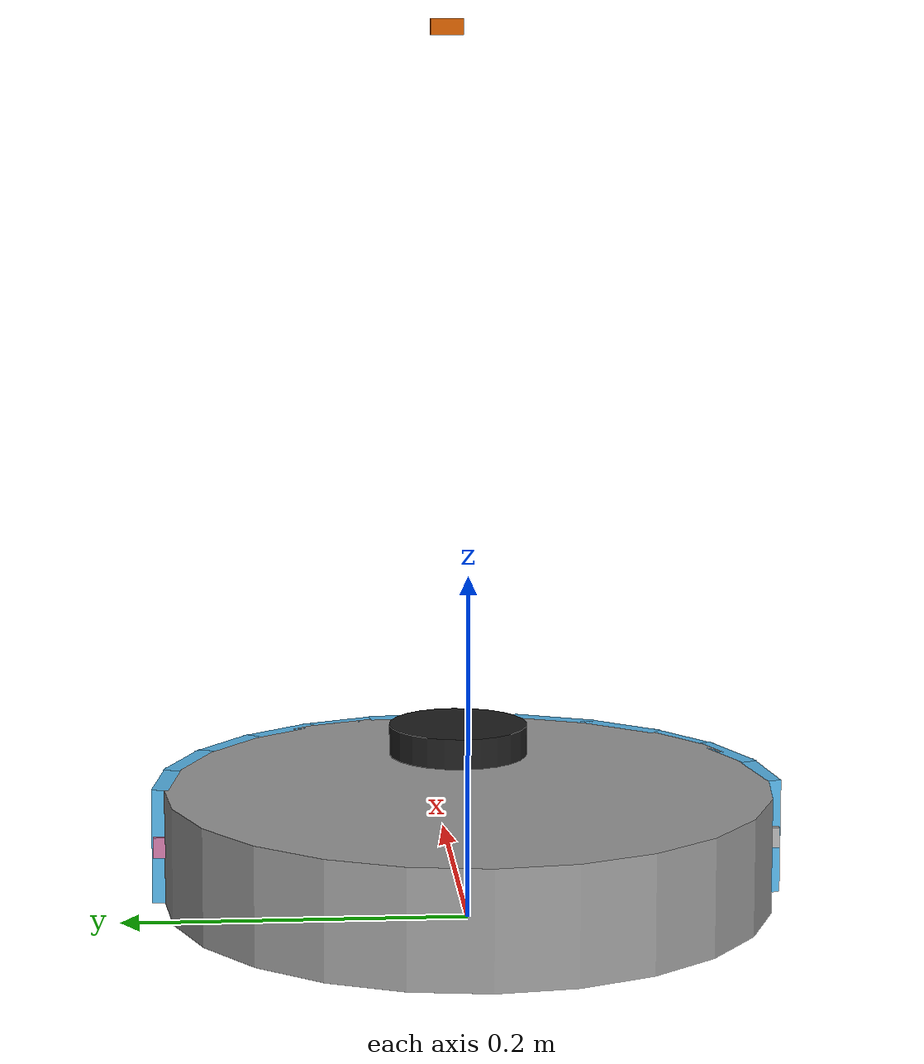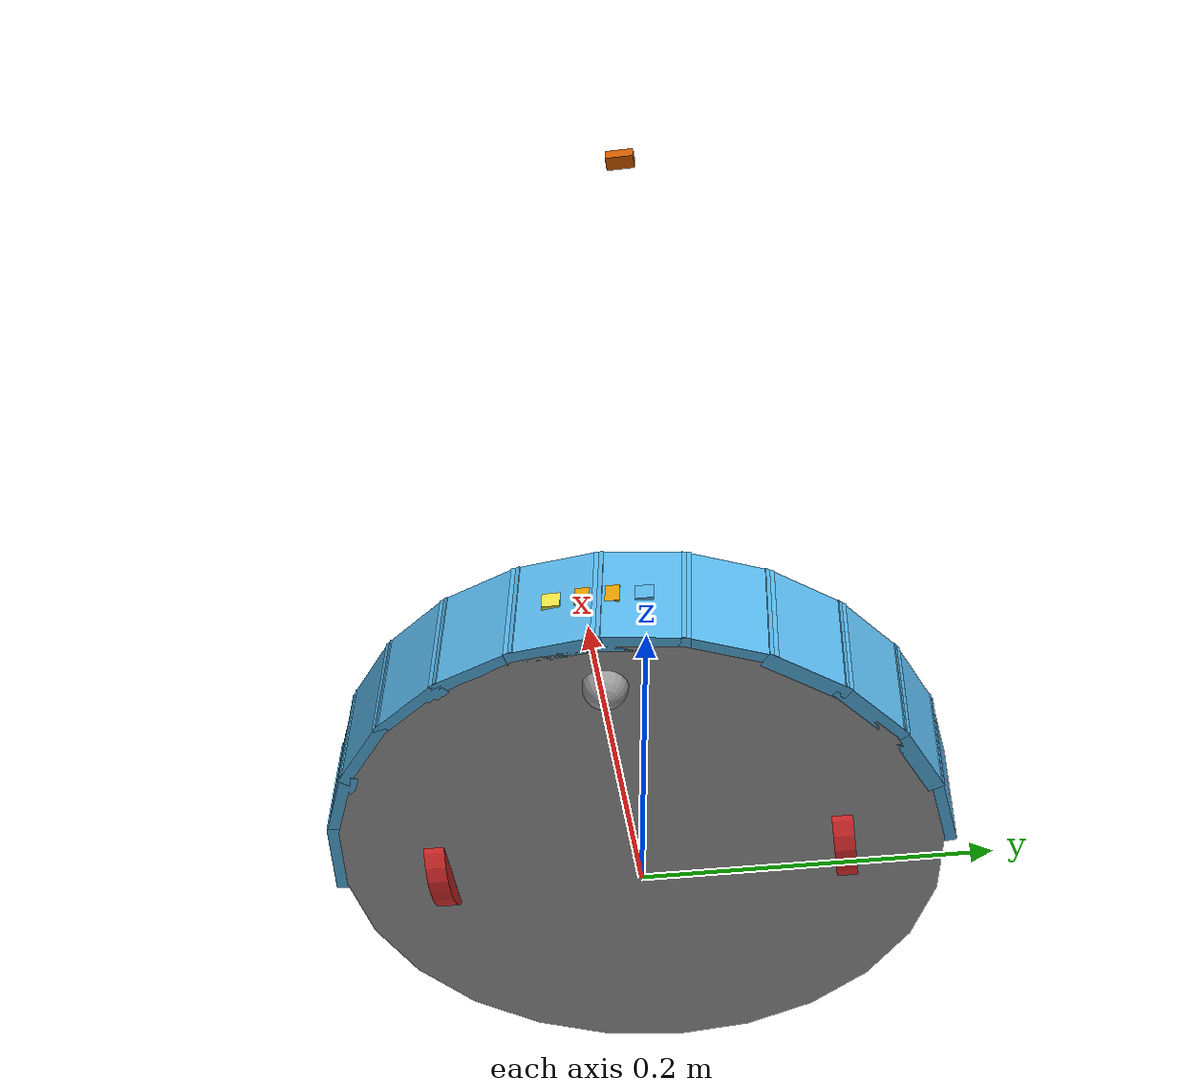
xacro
<?xml version="1.0" ?>
<robot name="semnav_robot" xmlns:xacro="http://ros.org/wiki/xacro">
  <xacro:include filename="params.xacro" />
  <xacro:include filename="inertial.xacro" />
  <xacro:include filename="plugins.xacro" />
  <xacro:include filename="materials.xacro" />

  <!-- One bumper facet: a thin box tangent to the body at angle 'ang' (deg from
       front), at the body radius. Named collision so the contact sensor can list it. -->
  <xacro:macro name="bumper_facet" params="prefix idx ang width">
    <visual>
      <origin xyz="${(base_diameter/2)*cos(ang*DEG2RAD)} ${(base_diameter/2)*sin(ang*DEG2RAD)} ${bumper_z}"
              rpy="0 0 ${(ang+90)*DEG2RAD}"/>
      <geometry>
        <box size="${width} ${bumper_thickness} ${bumper_height}"/>
      </geometry>
      <material name="dark"/>
    </visual>
    <collision name="${prefix}_${idx}">
      <origin xyz="${(base_diameter/2)*cos(ang*DEG2RAD)} ${(base_diameter/2)*sin(ang*DEG2RAD)} ${bumper_z}"
              rpy="0 0 ${(ang+90)*DEG2RAD}"/>
      <geometry>
        <box size="${width} ${bumper_thickness} ${bumper_height}"/>
      </geometry>
    </collision>
  </xacro:macro>

  <!-- A 90-deg bumper half built from 'n' facets spanning a0 .. a0+90 deg.
       Facet width = arc chord * 1.15 so neighbours overlap (continuous, no gaps). -->
  <xacro:macro name="bumper_arc" params="prefix a0 n i:=0">
    <xacro:if value="${i &lt; n}">
      <xacro:bumper_facet prefix="${prefix}" idx="${i}"
        ang="${a0 + (i + 0.5) * (90.0 / n)}"
        width="${2 * (base_diameter/2) * sin(0.5 * (90.0/n) * DEG2RAD) * 1.15}"/>
      <xacro:bumper_arc prefix="${prefix}" a0="${a0}" n="${n}" i="${i + 1}"/>
    </xacro:if>
  </xacro:macro>

  <xacro:macro name="side_range_sensor" params="prefix side_sign">
    <joint name="${prefix}_joint" type="fixed">
      <parent link="base_link"/>
      <child link="${prefix}_link"/>
      <origin xyz="${range_sensor_x} ${side_sign * base_diameter/2} ${range_sensor_z}"
              rpy="0 0 ${side_sign * range_sensor_angle_deg * DEG2RAD}"/>
    </joint>
    <link name="${prefix}_link">
      <visual>
        <origin xyz="0 0 0" rpy="0 0 0"/>
        <geometry>
          <box size="${range_sensor_size} ${range_sensor_size} ${range_sensor_size}"/>
        </geometry>
        <material name="dark"/>
      </visual>
      <xacro:solid_box_inertia m="${range_sensor_mass}"
        x="${range_sensor_size}" y="${range_sensor_size}" z="${range_sensor_size}"/>
    </link>
  </xacro:macro>

  <xacro:macro name="front_tof_sensor">
    <joint name="tof_front_joint" type="fixed">
      <parent link="base_link"/>
      <child link="tof_front_link"/>
      <origin xyz="${tof_front_x} 0 ${tof_front_z}" rpy="0 0 0"/>
    </joint>
    <link name="tof_front_link">
      <visual>
        <origin xyz="0 0 0" rpy="0 0 0"/>
        <geometry>
          <box size="${tof_front_size} ${2*tof_front_size} ${tof_front_size}"/>
        </geometry>
        <material name="dark"/>
      </visual>
      <xacro:solid_box_inertia m="${tof_front_mass}"
        x="${tof_front_size}" y="${2*tof_front_size}" z="${tof_front_size}"/>
    </link>
  </xacro:macro>

  <xacro:macro name="stereo_camera" params="side side_sign">
    <joint name="camera_${side}_joint" type="fixed">
      <parent link="base_link"/>
      <child link="camera_${side}_link"/>
      <origin xyz="${camera_x} ${side_sign * camera_baseline/2} ${camera_z}"
              rpy="0 0 0"/>
    </joint>
    <link name="camera_${side}_link">
      <visual>
        <origin xyz="0 0 0" rpy="0 0 0"/>
        <geometry>
          <box size="${camera_size} ${camera_size} ${camera_size}"/>
        </geometry>
        <material name="dark"/>
      </visual>
      <xacro:solid_box_inertia m="${camera_mass}"
        x="${camera_size}" y="${camera_size}" z="${camera_size}"/>
    </link>
    <joint name="camera_${side}_optical_joint" type="fixed">
      <parent link="camera_${side}_link"/>
      <child link="camera_${side}_optical_frame"/>
      <origin xyz="0 0 0" rpy="${-pi/2} 0 ${-pi/2}"/>
    </joint>
    <link name="camera_${side}_optical_frame"/>
  </xacro:macro>

  <!-- 深度相机 link + REP-103 光学坐标系（x 右、y 下、z 前）。
       位置与 tof_front 一致（车体前表面、中高）。gz 传感器在 plugins.xacro。 -->
  <xacro:macro name="depth_camera">
    <joint name="depth_camera_joint" type="fixed">
      <parent link="base_link"/>
      <child link="depth_camera_link"/>
      <origin xyz="${depth_camera_x} 0 ${depth_camera_z}" rpy="0 0 0"/>
    </joint>
    <link name="depth_camera_link">
      <visual>
        <origin xyz="0 0 0" rpy="0 0 0"/>
        <geometry>
          <box size="${depth_camera_size} ${2*depth_camera_size} ${depth_camera_size}"/>
        </geometry>
        <material name="dark"/>
      </visual>
      <xacro:solid_box_inertia m="${depth_camera_mass}"
        x="${depth_camera_size}" y="${2*depth_camera_size}" z="${depth_camera_size}"/>
    </link>
    <joint name="depth_camera_optical_joint" type="fixed">
      <parent link="depth_camera_link"/>
      <child link="depth_camera_optical_frame"/>
      <origin xyz="0 0 0" rpy="${-pi/2} 0 ${-pi/2}"/>
    </joint>
    <link name="depth_camera_optical_frame"/>
  </xacro:macro>

  <link name="base_footprint"/>

  <joint name="base_joint" type="fixed">
    <parent link="base_footprint"/>
    <child link="base_link"/>
    <origin xyz="0 0 ${floor_clearance}" rpy="0 0 0"/>
  </joint>

  <link name="base_link">
    <visual>
      <origin xyz="0 0 ${lower_cylinder_height/2}" rpy="0 0 0"/>
      <geometry>
        <cylinder length="${lower_cylinder_height}" radius="${base_diameter/2}"/>
      </geometry>
      <material name="grey"/>
    </visual>

    <collision>
      <origin xyz="0 0 ${lower_cylinder_height/2}" rpy="0 0 0"/>
      <geometry>
        <cylinder length="${lower_cylinder_height}" radius="${base_diameter/2}"/>
      </geometry>
    </collision>

    <!-- Continuous front bumper = front 180 deg of the cylinder wall (named
         collisions on base_link). Left half 0..+90 deg, right half -90..0 deg. -->
    <xacro:bumper_arc prefix="bumper_left" a0="0" n="${bumper_facets_per_side}"/>
    <xacro:bumper_arc prefix="bumper_right" a0="-90" n="${bumper_facets_per_side}"/>

    <xacro:solid_cylinder_inertia m="${lower_cylinder_mass}" r="${base_diameter/2}" h="${lower_cylinder_height}"/>
  </link>

  <joint name="caster_joint" type="fixed">
    <parent link="base_link"/>
    <child link="caster_link"/>
    <origin xyz="${base_diameter/2-caster_inset} 0 ${caster_diameter/2-floor_clearance}" rpy="0 0 0"/>
  </joint>

  <link name="caster_link">
    <visual>
      <origin xyz="0 0 0" rpy="0 0 0"/>
      <geometry>
        <sphere radius="${caster_diameter/2}"/>
      </geometry>
      <material name="grey"/>
    </visual>

   <collision>
      <origin xyz="0 0 0" rpy="0 0 0"/>
      <geometry>
        <sphere radius="${caster_diameter/2}"/>
      </geometry>
    </collision>

    <xacro:solid_sphere_inertia m="${caster_mass}" r="${caster_diameter/2}"/>
  </link>

  <joint name="wheel_left_joint" type="continuous">
    <parent link="base_link"/>
    <child link="wheel_left_link"/>
    <origin xyz="0 ${wheel_base/2} ${wheel_diameter/2-floor_clearance}" rpy="-${pi/2} 0 0"/>
    <axis xyz="0 0 1">
      <limit>
        <effort>${motor_stall_torque}</effort>
      </limit>
    </axis>
  </joint>

  <link name="wheel_left_link">
    <visual>
      <origin xyz="0 0 0" rpy="0 0 0"/>
      <geometry>
        <cylinder length="${wheel_width}" radius="${wheel_diameter/2}"/>
      </geometry>
      <material name="red"/>
    </visual>

    <collision>
      <origin xyz="0 0 0" rpy="0 0 0"/>
      <geometry>
        <cylinder length="${wheel_width}" radius="${wheel_diameter/2}"/>
      </geometry>
    </collision>

    <xacro:solid_cylinder_inertia m="${wheel_mass}" r="${wheel_diameter/2}" h="${wheel_width}"/>
  </link>

  <joint name="wheel_right_joint" type="continuous">
    <parent link="base_link"/>
    <child link="wheel_right_link"/>
    <origin xyz="0 ${-wheel_base/2} ${wheel_diameter/2-floor_clearance}" rpy="-${pi/2} 0 0"/>
    <axis xyz="0 0 1">
      <limit>
        <effort>${motor_stall_torque}</effort>
      </limit>
    </axis>
  </joint>

  <link name="wheel_right_link">
    <visual>
      <origin xyz="0 0 0" rpy="0 0 0"/>
      <geometry>
        <cylinder length="${wheel_width}" radius="${wheel_diameter/2}"/>
      </geometry>
      <material name="red"/>
    </visual>

    <collision>
      <origin xyz="0 0 0" rpy="0 0 0"/>
      <geometry>
        <cylinder length="${wheel_width}" radius="${wheel_diameter/2}"/>
      </geometry>
    </collision>

    <xacro:solid_cylinder_inertia m="${wheel_mass}" r="${wheel_diameter/2}" h="${wheel_width}"/>
  </link>

  <!-- Upright top-mounted LiDAR turret (+Z up, CCW scan) to match both the
       Gazebo gpu_lidar sensor and the physical robot's vacuum_ros2_bridge /scan. -->
  <joint name="scan_joint" type="fixed">
    <parent link="base_link"/>
    <child link="base_scan"/>
    <origin xyz="${lidar_center_offset} 0 ${lower_cylinder_height + laser_puck_offset}" rpy="0 0 0"/>
  </joint>

  <link name="base_scan">
    <visual>
      <origin xyz="0 0 0" rpy="0 0 0"/>
      <geometry>
        <cylinder length="${laser_puck_height}" radius="${laser_puck_diameter/2}"/>
      </geometry>
      <material name="black"/>
    </visual>

    <collision>
      <origin xyz="0 0 0" rpy="0 0 0"/>
      <geometry>
        <cylinder length="${laser_puck_height}" radius="${laser_puck_diameter/2}"/>
      </geometry>
    </collision>

    <xacro:solid_cylinder_inertia m="${laser_puck_mass}" r="${laser_puck_diameter/2}" h="${laser_puck_height}"/>
  </link>

  <!-- Left/right side distance sensors (short-range wall sensors) -->
  <xacro:side_range_sensor prefix="range_left" side_sign="1"/>
  <xacro:side_range_sensor prefix="range_right" side_sign="-1"/>

  <!-- Front multizone ToF depth sensor (front & center) -->
  <xacro:front_tof_sensor/>

  <!-- Front stereo cameras, flanking the ToF left/right -->
  <xacro:stereo_camera side="left" side_sign="1"/>
  <xacro:stereo_camera side="right" side_sign="-1"/>

  <!-- Depth camera (front & center, same mount as the ToF) -->
  <xacro:depth_camera/>

  <!-- IMU (gyro + accelerometer), near the body center -->
  <joint name="imu_joint" type="fixed">
    <parent link="base_link"/>
    <child link="imu_link"/>
    <origin xyz="${imu_x} ${imu_y} ${imu_z}" rpy="0 0 0"/>
  </joint>
  <link name="imu_link">
    <visual>
      <origin xyz="0 0 0" rpy="0 0 0"/>
      <geometry>
        <box size="${imu_size} ${imu_size} ${imu_size}"/>
      </geometry>
      <material name="orange"/>
    </visual>
    <xacro:solid_box_inertia m="${imu_mass}"
      x="${imu_size}" y="${imu_size}" z="${imu_size}"/>
  </link>

</robot>

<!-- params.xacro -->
<robot xmlns:xacro="http://ros.org/wiki/xacro">
  <!-- ****************** ROBOT DIMENSIONS ****************** -->
  <!-- Units: meters, degrees, kg, N*m, m/s2 -->
  <!-- 本体规格（源自 Apache-2.0 的 oomwoo-one，其由 Proscenic M6 Pro 分支而来，见 NOTICE）：
       圆盘机身 349mm 直径、约 95mm 高（含 LiDAR 塔台）。
       Geometry inherited — refine from the sourced parts + 3D design. -->
  <!-- wheel_base = measured wheel track 235mm. The bridge uses its own odometry
       constant WHEEL_BASE = 0.233m (2mm less); negligible, calibrate empirically. -->
  <xacro:property name="wheel_diameter" value="0.068"/>
  <xacro:property name="wheel_width" value="0.012"/>
  <xacro:property name="caster_diameter" value="0.025"/>
  <xacro:property name="caster_inset" value="0.030"/>
  <xacro:property name="floor_clearance" value="0.0125"/>
  <xacro:property name="base_diameter" value="0.349"/>
  <xacro:property name="wheel_base" value="0.235"/>
  <!-- Body cylinder: top is 79mm above the floor, minus 12.5mm floor gap = 66.5mm tall.
       LiDAR housing sits on top (body top 79mm + 18mm housing = ~97mm total height). -->
  <xacro:property name="lower_cylinder_height" value="0.0665"/>
  <!-- LiDAR housing, measured 18mm, seated flush on the body top -->
  <xacro:property name="laser_puck_height" value="0.018"/>
  <xacro:property name="laser_puck_diameter" value="0.083"/>
  <!-- offset = laser_puck_height/2 so the housing bottom sits at the body top -->
  <xacro:property name="laser_puck_offset" value="0.009"/>
  <xacro:property name="lidar_min_range" value="0.1"/>
  <xacro:property name="lidar_center_offset" value="${base_diameter/2 - lidar_min_range}"/>

  <xacro:property name="motor_stall_torque" value="0.5"/>
  <xacro:property name="max_linear_acceleration" value="1"/>
  <xacro:property name="lower_cylinder_mass" value="2.500"/>
  <!-- caster and battery weight -->
  <xacro:property name="caster_mass" value="0.050"/>
  <xacro:property name="wheel_mass" value="0.100"/>
  <xacro:property name="laser_puck_mass" value="0.150"/>

  <xacro:property name="bumper_facets_per_side" value="6"/>
  <xacro:property name="bumper_thickness" value="0.010"/> <!-- radial; outer face ~5mm proud -->
  <xacro:property name="bumper_height" value="${lower_cylinder_height}"/>
  <xacro:property name="bumper_z" value="${lower_cylinder_height/2}"/>  <!-- = body cylinder center, base_link frame -->

  <!-- ****************** SIDE DISTANCE SENSORS ****************** -->
  <xacro:property name="range_sensor_min" value="0.02"/>          <!-- m: closest reading -->
  <xacro:property name="range_sensor_max" value="0.50"/>          <!-- m: beyond this reads as no wall -->
  <xacro:property name="range_sensor_resolution" value="0.005"/>
  <xacro:property name="range_sensor_angle_deg" value="90.0"/>    <!-- deg from forward; 90 = straight out to the side -->
  <xacro:property name="range_sensor_x" value="0.0"/>             <!-- fore/aft mount offset along the side -->
  <xacro:property name="range_sensor_z" value="${lower_cylinder_height/2}"/> <!-- body mid-height, base_link frame -->
  <xacro:property name="range_sensor_update_rate" value="20"/>    <!-- Hz -->
  <xacro:property name="range_sensor_size" value="0.012"/>        <!-- visual cube edge (m) -->
  <xacro:property name="range_sensor_mass" value="0.005"/>        <!-- kg, negligible -->
  <xacro:property name="range_sensor_samples" value="3"/>         <!-- rays across the FOV (2 or more) -->
  <xacro:property name="range_sensor_fov_deg" value="1.0"/>       <!-- total beam FOV (deg) -->

  <!-- ****************** FRONT DISTANCE SENSOR (multizone ToF) ****************** -->
  <xacro:property name="tof_front_h_samples" value="16"/>          <!-- 8 + 8 zones across -->
  <xacro:property name="tof_front_v_samples" value="8"/>           <!-- 8 zones tall -->
  <xacro:property name="tof_front_hfov_deg" value="120.0"/>        <!-- 2 x 60 deg -->
  <xacro:property name="tof_front_vfov_deg" value="60.0"/>         <!-- one sensor's vertical FoV -->
  <xacro:property name="tof_front_min" value="0.02"/>
  <xacro:property name="tof_front_max" value="4.0"/>               <!-- m: VL53L7CX long range -->
  <xacro:property name="tof_front_resolution" value="0.005"/>
  <xacro:property name="tof_front_update_rate" value="15"/>        <!-- Hz -->
  <xacro:property name="tof_front_x" value="${base_diameter/2}"/>  <!-- front surface -->
  <xacro:property name="tof_front_z" value="${lower_cylinder_height/2}"/> <!-- mid-height -->
  <xacro:property name="tof_front_size" value="0.012"/>            <!-- visual cube edge (m) -->
  <xacro:property name="tof_front_mass" value="0.005"/>            <!-- kg, negligible -->

  <!-- ****************** FRONT STEREO CAMERAS (OV5647) ****************** -->
  <xacro:property name="camera_width" value="640"/>                <!-- VGA -->
  <xacro:property name="camera_height" value="480"/>
  <xacro:property name="camera_hfov_deg" value="120.0"/>
  <xacro:property name="camera_near" value="0.02"/>
  <xacro:property name="camera_far" value="10.0"/>
  <xacro:property name="camera_update_rate" value="15"/>           <!-- Hz -->
  <xacro:property name="camera_baseline" value="0.05"/>            <!-- m: compact stereo base -->
  <xacro:property name="camera_x" value="${base_diameter/2}"/>     <!-- front surface -->
  <xacro:property name="camera_z" value="${lower_cylinder_height/2}"/> <!-- mid-height, flanking the ToF -->
  <xacro:property name="camera_size" value="0.010"/>               <!-- visual cube edge (m) -->
  <xacro:property name="camera_mass" value="0.005"/>               <!-- kg, negligible -->

  <!-- ****************** DEPTH CAMERA ****************** -->
  <xacro:property name="depth_camera_mount_height" value="0.50"/>
  <xacro:property name="depth_camera_width" value="640"/>
  <xacro:property name="depth_camera_height" value="914"/>
  <xacro:property name="depth_camera_hfov_deg" value="90.0"/>
  <xacro:property name="depth_camera_near" value="0.05"/>
  <xacro:property name="depth_camera_far" value="5.0"/>
  <xacro:property name="depth_camera_update_rate" value="10"/>     <!-- Hz -->
  <xacro:property name="depth_camera_x" value="${base_diameter/2}"/> <!-- 前表面 -->
  <xacro:property name="depth_camera_z" value="${depth_camera_mount_height}"/>
  <xacro:property name="depth_camera_size" value="0.010"/>         <!-- visual cube edge -->
  <xacro:property name="depth_camera_mass" value="0.005"/>         <!-- kg -->

  <!-- ****************** IMU ****************** -->
  <xacro:property name="imu_x" value="0.0"/>
  <xacro:property name="imu_y" value="0.0"/>
  <xacro:property name="imu_z" value="${lower_cylinder_height/2}"/> <!-- body mid-height -->
  <xacro:property name="imu_update_rate" value="100"/>             <!-- Hz -->
  <xacro:property name="imu_gyro_noise" value="0.0002"/>           <!-- rad/s stddev (MEMS-ish) -->
  <xacro:property name="imu_accel_noise" value="0.017"/>           <!-- m/s^2 stddev -->
  <xacro:property name="imu_size" value="0.010"/>                  <!-- visual cube edge (m) -->
  <xacro:property name="imu_mass" value="0.005"/>                  <!-- kg, negligible -->

  <xacro:property name="DEG2RAD" value="0.0174533"/>
</robot>
